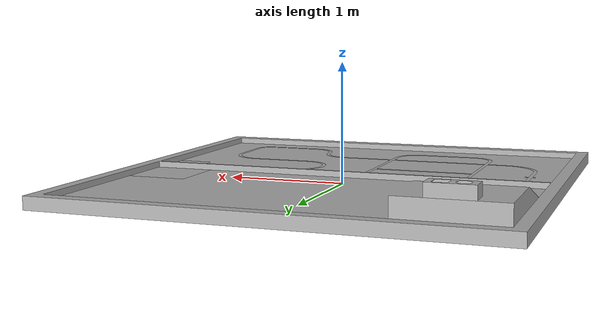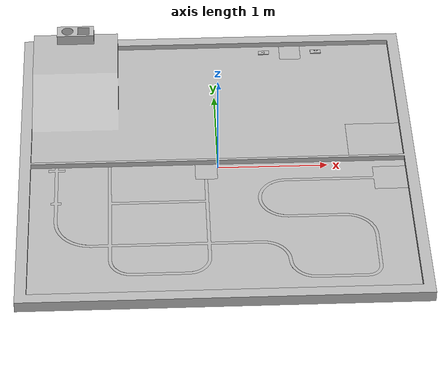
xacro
<?xml version="1.0" ?>
<robot name="vrc_demo" xmlns:xacro="http://www.ros.org/wiki/xacro">

<xacro:include filename="$(find vrc_demo_description)/urdf/materials.xacro" />
<xacro:include filename="$(find vrc_demo_description)/urdf/vrc_demo.trans" />
<xacro:include filename="$(find vrc_demo_description)/urdf/vrc_demo.gazebo" />
<link name="areana_base_link">
  <inertial>
    <origin rpy="0 0 0" xyz="1.0486217820985735e-15 -0.00011421341889506291 0.03903967200367241"/>
    <mass value="1673.2550863707147"/>
    <inertia ixx="2796.948924" ixy="0.0" ixz="-0.0" iyy="2860.115756" iyz="0.00305" izz="5653.169967"/>
  </inertial>
  <visual>
    <origin rpy="0 0 0" xyz="0 0 0"/>
    <geometry>
      <mesh filename="package://vrc_demo_description/meshes/areana_base_link.stl" scale="0.001 0.001 0.001"/>
    </geometry>
    <material name="silver"/>
  </visual>
  <collision>
    <origin rpy="0 0 0" xyz="0 0 0"/>
    <geometry>
      <mesh filename="package://vrc_demo_description/meshes/areana_base_link.stl" scale="0.001 0.001 0.001"/>
    </geometry>
  </collision>
</link>

<link name="line_base_1">
  <inertial>
    <origin rpy="0 0 0" xyz="-1.699949882465146 -0.8480695357265082 0.02492760412451797"/>
    <mass value="2225.9524658446803"/>
    <inertia ixx="522.054091" ixy="-0.321748" ixz="0.038763" iyy="2158.44237" iyz="0.024036" izz="2679.573946"/>
  </inertial>
  <visual>
    <origin rpy="0 0 0" xyz="-1.7 0.015199 -0.005"/>
    <geometry>
      <mesh filename="package://vrc_demo_description/meshes/line_base_1.stl" scale="0.001 0.001 0.001"/>
    </geometry>
    <material name="silver"/>
  </visual>
  <collision>
    <origin rpy="0 0 0" xyz="-1.7 0.015199 -0.005"/>
    <geometry>
      <mesh filename="package://vrc_demo_description/meshes/line_base_1.stl" scale="0.001 0.001 0.001"/>
    </geometry>
  </collision>
</link>

<link name="line_track_1">
  <inertial>
    <origin rpy="0 0 0" xyz="-1.4594127487933177 -0.614117522556499 0.0010000000000002923"/>
    <mass value="6.714573593450083"/>
    <inertia ixx="1.33463" ixy="-0.729222" ixz="0.0" iyy="7.314841" iyz="0.0" izz="8.649467"/>
  </inertial>
  <visual>
    <origin rpy="0 0 0" xyz="-1.7 0.1 -0.053"/>
    <geometry>
      <mesh filename="package://vrc_demo_description/meshes/line_track_1.stl" scale="0.001 0.001 0.001"/>
    </geometry>
    <material name="silver"/>
  </visual>
  <collision>
    <origin rpy="0 0 0" xyz="-1.7 0.1 -0.053"/>
    <geometry>
      <mesh filename="package://vrc_demo_description/meshes/line_track_1.stl" scale="0.001 0.001 0.001"/>
    </geometry>
  </collision>
</link>

<link name="auto_plane_surface_1">
  <inertial>
    <origin rpy="0 0 0" xyz="-0.09999999999999999 0.09999999999999964 -0.02499999999999999"/>
    <mass value="15.7"/>
    <inertia ixx="0.055604" ixy="0.0" ixz="0.0" iyy="0.055604" iyz="-0.0" izz="0.104667"/>
  </inertial>
  <visual>
    <origin rpy="0 0 0" xyz="0.01 0.2152 -0.055"/>
    <geometry>
      <mesh filename="package://vrc_demo_description/meshes/auto_plane_surface_1.stl" scale="0.001 0.001 0.001"/>
    </geometry>
    <material name="silver"/>
  </visual>
  <collision>
    <origin rpy="0 0 0" xyz="0.01 0.2152 -0.055"/>
    <geometry>
      <mesh filename="package://vrc_demo_description/meshes/auto_plane_surface_1.stl" scale="0.001 0.001 0.001"/>
    </geometry>
  </collision>
</link>

<link name="mr_start_1">
  <inertial>
    <origin rpy="0 0 0" xyz="-0.24999999999999933 0.25000023836229646 0.02499999999999943"/>
    <mass value="98.12499999999999"/>
    <inertia ixx="2.064714" ixy="0.0" ixz="-0.0" iyy="2.064714" iyz="0.0" izz="4.088542"/>
  </inertial>
  <visual>
    <origin rpy="0 0 0" xyz="-1.7 -0.00937 -0.005"/>
    <geometry>
      <mesh filename="package://vrc_demo_description/meshes/mr_start_1.stl" scale="0.001 0.001 0.001"/>
    </geometry>
    <material name="silver"/>
  </visual>
  <collision>
    <origin rpy="0 0 0" xyz="-1.7 -0.00937 -0.005"/>
    <geometry>
      <mesh filename="package://vrc_demo_description/meshes/mr_start_1.stl" scale="0.001 0.001 0.001"/>
    </geometry>
  </collision>
</link>

<link name="mr_area_1">
  <inertial>
    <origin rpy="0 0 0" xyz="-1.6960937822898876 0.4903741862119978 0.014337304627361873"/>
    <mass value="3272.720416905514"/>
    <inertia ixx="691.610356" ixy="244.990605" ixz="103.494886" iyy="3135.074868" iyz="-35.514933" izz="3799.34016"/>
  </inertial>
  <visual>
    <origin rpy="0 0 0" xyz="-1.2 -0.50937 -0.055"/>
    <geometry>
      <mesh filename="package://vrc_demo_description/meshes/mr_area_1.stl" scale="0.001 0.001 0.001"/>
    </geometry>
    <material name="silver"/>
  </visual>
  <collision>
    <origin rpy="0 0 0" xyz="-1.2 -0.50937 -0.055"/>
    <geometry>
      <mesh filename="package://vrc_demo_description/meshes/mr_area_1.stl" scale="0.001 0.001 0.001"/>
    </geometry>
  </collision>
</link>

<link name="drop_box_1">
  <inertial>
    <origin rpy="0 0 0" xyz="-0.0015367083162811657 -0.07499999999999729 0.060689705796863946"/>
    <mass value="2.984554666349194"/>
    <inertia ixx="0.014784" ixy="0.0" ixz="0.000173" iyy="0.04857" iyz="0.0" izz="0.057062"/>
  </inertial>
  <visual>
    <origin rpy="0 0 0" xyz="1.3 -1.7 -0.255"/>
    <geometry>
      <mesh filename="package://vrc_demo_description/meshes/drop_box_1.stl" scale="0.001 0.001 0.001"/>
    </geometry>
    <material name="silver"/>
  </visual>
  <collision>
    <origin rpy="0 0 0" xyz="1.3 -1.7 -0.255"/>
    <geometry>
      <mesh filename="package://vrc_demo_description/meshes/drop_box_1.stl" scale="0.001 0.001 0.001"/>
    </geometry>
  </collision>
</link>

<link name="plane_surface_1">
  <inertial>
    <origin rpy="0 0 0" xyz="-0.09999999999999998 0.10000000000000009 -0.02500000000000028"/>
    <mass value="15.7"/>
    <inertia ixx="0.055604" ixy="0.0" ixz="0.0" iyy="0.055604" iyz="0.0" izz="0.104667"/>
  </inertial>
  <visual>
    <origin rpy="0 0 0" xyz="-0.85 -1.5 -0.055"/>
    <geometry>
      <mesh filename="package://vrc_demo_description/meshes/plane_surface_1.stl" scale="0.001 0.001 0.001"/>
    </geometry>
    <material name="silver"/>
  </visual>
  <collision>
    <origin rpy="0 0 0" xyz="-0.85 -1.5 -0.055"/>
    <geometry>
      <mesh filename="package://vrc_demo_description/meshes/plane_surface_1.stl" scale="0.001 0.001 0.001"/>
    </geometry>
  </collision>
</link>

<link name="plateb_1">
  <inertial>
    <origin rpy="0 0 0" xyz="0.010104423477318325 2.4148421771119644e-05 0.004813585285826233"/>
    <mass value="0.3726520950329406"/>
    <inertia ixx="8.3e-05" ixy="-0.0" ixz="-0.0" iyy="0.000325" iyz="-0.0" izz="0.000402"/>
  </inertial>
  <visual>
    <origin rpy="0 0 0" xyz="-0.49 -1.6 -0.055"/>
    <geometry>
      <mesh filename="package://vrc_demo_description/meshes/plateb_1.stl" scale="0.001 0.001 0.001"/>
    </geometry>
    <material name="silver"/>
  </visual>
  <collision>
    <origin rpy="0 0 0" xyz="-0.49 -1.6 -0.055"/>
    <geometry>
      <mesh filename="package://vrc_demo_description/meshes/plateb_1.stl" scale="0.001 0.001 0.001"/>
    </geometry>
  </collision>
</link>

<link name="platea_1">
  <inertial>
    <origin rpy="0 0 0" xyz="-0.010045955800073392 2.2039675367846456e-05 0.0048656293312962715"/>
    <mass value="0.37798826448036216"/>
    <inertia ixx="8.4e-05" ixy="0.0" ixz="0.0" iyy="0.000327" iyz="-0.0" izz="0.000405"/>
  </inertial>
  <visual>
    <origin rpy="0 0 0" xyz="-1.01 -1.6 -0.055"/>
    <geometry>
      <mesh filename="package://vrc_demo_description/meshes/platea_1.stl" scale="0.001 0.001 0.001"/>
    </geometry>
    <material name="silver"/>
  </visual>
  <collision>
    <origin rpy="0 0 0" xyz="-1.01 -1.6 -0.055"/>
    <geometry>
      <mesh filename="package://vrc_demo_description/meshes/platea_1.stl" scale="0.001 0.001 0.001"/>
    </geometry>
  </collision>
</link>

<joint name="Rigid9" type="fixed">
  <origin rpy="0 0 0" xyz="1.7 -0.015199 0.005"/>
  <parent link="areana_base_link"/>
  <child link="line_base_1"/>
</joint>

<joint name="Rigid10" type="fixed">
  <origin rpy="0 0 0" xyz="0.0 -0.084801 0.048"/>
  <parent link="line_base_1"/>
  <child link="line_track_1"/>
</joint>

<joint name="Rigid11" type="fixed">
  <origin rpy="0 0 0" xyz="-1.71 -0.200001 0.05"/>
  <parent link="line_base_1"/>
  <child link="auto_plane_surface_1"/>
</joint>

<joint name="Rigid12" type="fixed">
  <origin rpy="0 0 0" xyz="1.7 0.00937 0.005"/>
  <parent link="areana_base_link"/>
  <child link="mr_start_1"/>
</joint>

<joint name="Rigid13" type="fixed">
  <origin rpy="0 0 0" xyz="-0.5 0.5 0.05"/>
  <parent link="mr_start_1"/>
  <child link="mr_area_1"/>
</joint>

<joint name="Rigid14" type="fixed">
  <origin rpy="0 0 0" xyz="-2.5 1.19063 0.2"/>
  <parent link="mr_area_1"/>
  <child link="drop_box_1"/>
</joint>

<joint name="Rigid15" type="fixed">
  <origin rpy="0 0 0" xyz="-0.35 0.99063 0.0"/>
  <parent link="mr_area_1"/>
  <child link="plane_surface_1"/>
</joint>

<joint name="Rigid16" type="fixed">
  <origin rpy="0 0 0" xyz="-0.71 1.09063 0.0"/>
  <parent link="mr_area_1"/>
  <child link="plateb_1"/>
</joint>

<joint name="Rigid17" type="fixed">
  <origin rpy="0 0 0" xyz="-0.19 1.09063 0.0"/>
  <parent link="mr_area_1"/>
  <child link="platea_1"/>
</joint>

</robot>

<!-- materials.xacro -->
<robot name="vrc_demo" xmlns:xacro="http://www.ros.org/wiki/xacro" >

<material name="silver">
  <color rgba="0.700 0.700 0.700 1.000"/>
</material>

</robot>

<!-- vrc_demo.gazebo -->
<robot name="vrc_demo" xmlns:xacro="http://www.ros.org/wiki/xacro" >

<xacro:property name="body_color" value="Gazebo/White" />
<xacro:property name="black_color" value="Gazebo/Black" />
<xacro:property name="red_color" value="Gazebo/Red" />
<xacro:property name="blue_color" value="Gazebo/SkyBlue" />
<xacro:property name="yellow_color" value="Gazebo/Yellow" />
<xacro:property name="green_color" value="Gazebo/Green" />

<gazebo reference="areana_base_link">
  <material>${black_color}</material>
  <mu1>1.0</mu1>
  <mu2>1.0</mu2>
  <selfCollide>true</selfCollide>
  <gravity>true</gravity>
  <static>true</static>
</gazebo>

<gazebo reference="line_base_1">
  <material>${body_color}</material>
  <mu1>1.0</mu1>
  <mu2>1.0</mu2>
  <selfCollide>true</selfCollide>
</gazebo>

<gazebo reference="line_track_1">
  <material>${black_color}</material>
  <mu1>1.0</mu1>
  <mu2>1.0</mu2>
  <selfCollide>true</selfCollide>
</gazebo>

<gazebo reference="auto_plane_surface_1">
  <material>${yellow_color}</material>
  <mu1>1.0</mu1>
  <mu2>1.0</mu2>
  <selfCollide>true</selfCollide>
</gazebo>

<gazebo reference="mr_start_1">
  <material>${green_color}</material>
  <mu1>1.0</mu1>
  <mu2>1.0</mu2>
  <selfCollide>true</selfCollide>
</gazebo>

<gazebo reference="mr_area_1">
  <material>${blue_color}</material>
  <mu1>1.0</mu1>
  <mu2>1.0</mu2>
  <selfCollide>true</selfCollide>
</gazebo>

<gazebo reference="drop_box_1">
  <material>${red_color}</material>
  <mu1>1.0</mu1>
  <mu2>1.0</mu2>
  <selfCollide>true</selfCollide>
</gazebo>

<gazebo reference="plane_surface_1">
  <material>${yellow_color}</material>
  <mu1>1.0</mu1>
  <mu2>1.0</mu2>
  <selfCollide>true</selfCollide>
</gazebo>

<gazebo reference="plateb_1">
  <material>${body_color}</material>
  <mu1>1.0</mu1>
  <mu2>1.0</mu2>
  <selfCollide>true</selfCollide>
</gazebo>

<gazebo reference="platea_1">
  <material>${body_color}</material>
  <mu1>1.0</mu1>
  <mu2>1.0</mu2>
  <selfCollide>true</selfCollide>
</gazebo>

</robot>
